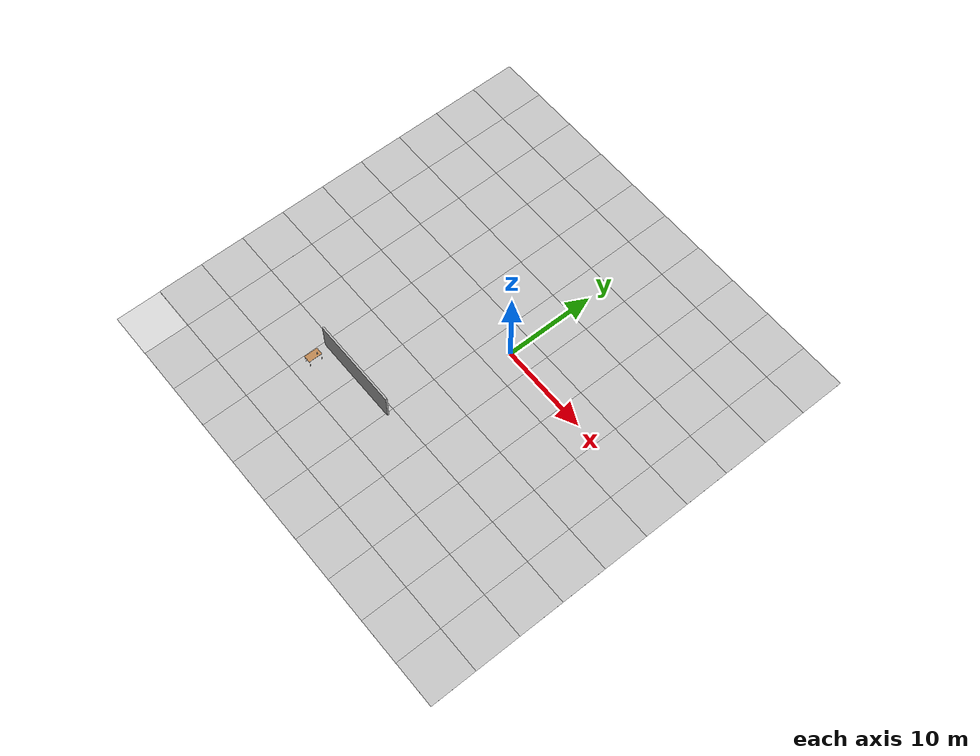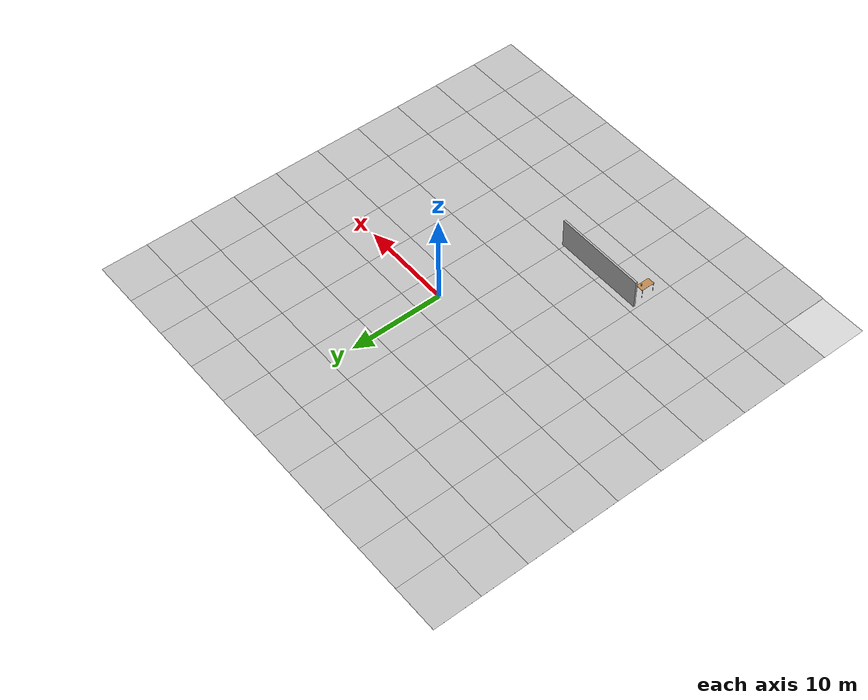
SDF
<sdf version="1.5">
 <world name="drc_practice_task_6">
  <scene>
   <grid>0</grid>
   <ambient>0.2 0.2 0.2 1</ambient>
   <background>0.7 0.7 0.7 1</background>
   <shadows>1</shadows>
  </scene>
  <physics type="ode">
   <gravity>0 0 -9.81</gravity>
   <ode>
    <solver>
     <type>quick</type>
     <iters>50</iters>
     <sor>1.4</sor>
     <use_dynamic_moi_rescaling>0</use_dynamic_moi_rescaling>
    </solver>
    <constraints>
     <cfm>0</cfm>
     <erp>0.2</erp>
     <contact_max_correcting_vel>100</contact_max_correcting_vel>
     <contact_surface_layer>0</contact_surface_layer>
    </constraints>
   </ode>
   <real_time_update_rate>1000</real_time_update_rate>
   <max_step_size>0.001</max_step_size>
   <real_time_factor>1</real_time_factor>
   <magnetic_field>5.5645e-06 2.28758e-05 -4.23884e-05</magnetic_field>
  </physics>
  <light name="sun" type="directional">
   <pose>0 0 100 0 -0 0</pose>
   <diffuse>0.9 0.9 0.9 1</diffuse>
   <specular>0.1 0.1 0.1 1</specular>
   <attenuation>
    <range>1000</range>
    <constant>0.9</constant>
    <linear>0.01</linear>
    <quadratic>0.001</quadratic>
   </attenuation>
   <direction>0.2 0.2 -0.9</direction>
  </light>
  <light name="light_bulb_2" type="point">
   <cast_shadows>0</cast_shadows>
   <pose>-10.6 -19.8 5 0 -0 0</pose>
   <diffuse>0.5 0.5 0.5 1</diffuse>
   <specular>0 0 0 1</specular>
   <attenuation>
    <range>80</range>
    <constant>0.9</constant>
    <linear>0.01</linear>
    <quadratic>0.001</quadratic>
   </attenuation>
   <direction>0 0 -1</direction>
  </light>
  <model name="pavement_plane">
   <static>1</static>
   <link name="link">
    <collision name="collision">
     <geometry><plane><normal>0 0 1</normal><size>50 50</size></plane></geometry>
     <surface><friction><ode><mu>100</mu><mu2>50</mu2></ode></friction></surface>
    </collision>
    <visual name="visual_0">
     <pose>-25 -25 0 0 -0 0</pose>
     <cast_shadows>0</cast_shadows>
     <geometry><plane><normal>0 0 1</normal><size>5 5</size></plane></geometry>
     <material>
      <script>
       <uri>model://pavement_plane/materials/scripts</uri>
       <uri>model://pavement_plane/materials/textures</uri>
       <name>vrc/pavement</name>
      </script>
     </material>
    </visual>
    <visual name="visual_1">
     <pose>-20 -25 0 0 -0 0</pose>
     <cast_shadows>0</cast_shadows>
     <geometry><plane><normal>0 0 1</normal><size>5 5</size></plane></geometry>
     <material>
      <script>
       <uri>model://pavement_plane/materials/scripts</uri>
       <uri>model://pavement_plane/materials/textures</uri>
       <name>vrc/pavement</name>
      </script>
     </material>
    </visual>
    <visual name="visual_2">
     <pose>-15 -25 0 0 -0 0</pose>
     <cast_shadows>0</cast_shadows>
     <geometry><plane><normal>0 0 1</normal><size>5 5</size></plane></geometry>
     <material>
      <script>
       <uri>model://pavement_plane/materials/scripts</uri>
       <uri>model://pavement_plane/materials/textures</uri>
       <name>vrc/pavement</name>
      </script>
     </material>
    </visual>
    <visual name="visual_3">
     <pose>-10 -25 0 0 -0 0</pose>
     <cast_shadows>0</cast_shadows>
     <geometry><plane><normal>0 0 1</normal><size>5 5</size></plane></geometry>
     <material>
      <script>
       <uri>model://pavement_plane/materials/scripts</uri>
       <uri>model://pavement_plane/materials/textures</uri>
       <name>vrc/pavement</name>
      </script>
     </material>
    </visual>
    <visual name="visual_4">
     <pose>-5 -25 0 0 -0 0</pose>
     <cast_shadows>0</cast_shadows>
     <geometry><plane><normal>0 0 1</normal><size>5 5</size></plane></geometry>
     <material>
      <script>
       <uri>model://pavement_plane/materials/scripts</uri>
       <uri>model://pavement_plane/materials/textures</uri>
       <name>vrc/pavement</name>
      </script>
     </material>
    </visual>
    <visual name="visual_5">
     <pose>0 -25 0 0 -0 0</pose>
     <cast_shadows>0</cast_shadows>
     <geometry><plane><normal>0 0 1</normal><size>5 5</size></plane></geometry>
     <material>
      <script>
       <uri>model://pavement_plane/materials/scripts</uri>
       <uri>model://pavement_plane/materials/textures</uri>
       <name>vrc/pavement</name>
      </script>
     </material>
    </visual>
    <visual name="visual_6">
     <pose>5 -25 0 0 -0 0</pose>
     <cast_shadows>0</cast_shadows>
     <geometry><plane><normal>0 0 1</normal><size>5 5</size></plane></geometry>
     <material>
      <script>
       <uri>model://pavement_plane/materials/scripts</uri>
       <uri>model://pavement_plane/materials/textures</uri>
       <name>vrc/pavement</name>
      </script>
     </material>
    </visual>
    <visual name="visual_7">
     <pose>10 -25 0 0 -0 0</pose>
     <cast_shadows>0</cast_shadows>
     <geometry><plane><normal>0 0 1</normal><size>5 5</size></plane></geometry>
     <material>
      <script>
       <uri>model://pavement_plane/materials/scripts</uri>
       <uri>model://pavement_plane/materials/textures</uri>
       <name>vrc/pavement</name>
      </script>
     </material>
    </visual>
    <visual name="visual_8">
     <pose>15 -25 0 0 -0 0</pose>
     <cast_shadows>0</cast_shadows>
     <geometry><plane><normal>0 0 1</normal><size>5 5</size></plane></geometry>
     <material>
      <script>
       <uri>model://pavement_plane/materials/scripts</uri>
       <uri>model://pavement_plane/materials/textures</uri>
       <name>vrc/pavement</name>
      </script>
     </material>
    </visual>
    <visual name="visual_9">
     <pose>20 -25 0 0 -0 0</pose>
     <cast_shadows>0</cast_shadows>
     <geometry><plane><normal>0 0 1</normal><size>5 5</size></plane></geometry>
     <material>
      <script>
       <uri>model://pavement_plane/materials/scripts</uri>
       <uri>model://pavement_plane/materials/textures</uri>
       <name>vrc/pavement</name>
      </script>
     </material>
    </visual>
    <visual name="visual_10">
     <pose>-25 -20 0 0 -0 0</pose>
     <cast_shadows>0</cast_shadows>
     <geometry><plane><normal>0 0 1</normal><size>5 5</size></plane></geometry>
     <material>
      <script>
       <uri>model://pavement_plane/materials/scripts</uri>
       <uri>model://pavement_plane/materials/textures</uri>
       <name>vrc/pavement</name>
      </script>
     </material>
    </visual>
    <visual name="visual_11">
     <pose>-20 -20 0 0 -0 0</pose>
     <cast_shadows>0</cast_shadows>
     <geometry><plane><normal>0 0 1</normal><size>5 5</size></plane></geometry>
     <material>
      <script>
       <uri>model://pavement_plane/materials/scripts</uri>
       <uri>model://pavement_plane/materials/textures</uri>
       <name>vrc/pavement</name>
      </script>
     </material>
    </visual>
    <visual name="visual_12">
     <pose>-15 -20 0 0 -0 0</pose>
     <cast_shadows>0</cast_shadows>
     <geometry><plane><normal>0 0 1</normal><size>5 5</size></plane></geometry>
     <material>
      <script>
       <uri>model://pavement_plane/materials/scripts</uri>
       <uri>model://pavement_plane/materials/textures</uri>
       <name>vrc/pavement</name>
      </script>
     </material>
    </visual>
    <visual name="visual_13">
     <pose>-10 -20 0 0 -0 0</pose>
     <cast_shadows>0</cast_shadows>
     <geometry><plane><normal>0 0 1</normal><size>5 5</size></plane></geometry>
     <material>
      <script>
       <uri>model://pavement_plane/materials/scripts</uri>
       <uri>model://pavement_plane/materials/textures</uri>
       <name>vrc/pavement</name>
      </script>
     </material>
    </visual>
    <visual name="visual_14">
     <pose>-5 -20 0 0 -0 0</pose>
     <cast_shadows>0</cast_shadows>
     <geometry><plane><normal>0 0 1</normal><size>5 5</size></plane></geometry>
     <material>
      <script>
       <uri>model://pavement_plane/materials/scripts</uri>
       <uri>model://pavement_plane/materials/textures</uri>
       <name>vrc/pavement</name>
      </script>
     </material>
    </visual>
    <visual name="visual_15">
     <pose>0 -20 0 0 -0 0</pose>
     <cast_shadows>0</cast_shadows>
     <geometry><plane><normal>0 0 1</normal><size>5 5</size></plane></geometry>
     <material>
      <script>
       <uri>model://pavement_plane/materials/scripts</uri>
       <uri>model://pavement_plane/materials/textures</uri>
       <name>vrc/pavement</name>
      </script>
     </material>
    </visual>
    <visual name="visual_16">
     <pose>5 -20 0 0 -0 0</pose>
     <cast_shadows>0</cast_shadows>
     <geometry><plane><normal>0 0 1</normal><size>5 5</size></plane></geometry>
     <material>
      <script>
       <uri>model://pavement_plane/materials/scripts</uri>
       <uri>model://pavement_plane/materials/textures</uri>
       <name>vrc/pavement</name>
      </script>
     </material>
    </visual>
    <visual name="visual_17">
     <pose>10 -20 0 0 -0 0</pose>
     <cast_shadows>0</cast_shadows>
     <geometry><plane><normal>0 0 1</normal><size>5 5</size></plane></geometry>
     <material>
      <script>
       <uri>model://pavement_plane/materials/scripts</uri>
       <uri>model://pavement_plane/materials/textures</uri>
       <name>vrc/pavement</name>
      </script>
     </material>
    </visual>
    <visual name="visual_18">
     <pose>15 -20 0 0 -0 0</pose>
     <cast_shadows>0</cast_shadows>
     <geometry><plane><normal>0 0 1</normal><size>5 5</size></plane></geometry>
     <material>
      <script>
       <uri>model://pavement_plane/materials/scripts</uri>
       <uri>model://pavement_plane/materials/textures</uri>
       <name>vrc/pavement</name>
      </script>
     </material>
    </visual>
    <visual name="visual_19">
     <pose>20 -20 0 0 -0 0</pose>
     <cast_shadows>0</cast_shadows>
     <geometry><plane><normal>0 0 1</normal><size>5 5</size></plane></geometry>
     <material>
      <script>
       <uri>model://pavement_plane/materials/scripts</uri>
       <uri>model://pavement_plane/materials/textures</uri>
       <name>vrc/pavement</name>
      </script>
     </material>
    </visual>
    <visual name="visual_20">
     <pose>-25 -15 0 0 -0 0</pose>
     <cast_shadows>0</cast_shadows>
     <geometry><plane><normal>0 0 1</normal><size>5 5</size></plane></geometry>
     <material>
      <script>
       <uri>model://pavement_plane/materials/scripts</uri>
       <uri>model://pavement_plane/materials/textures</uri>
       <name>vrc/pavement</name>
      </script>
     </material>
    </visual>
    <visual name="visual_21">
     <pose>-20 -15 0 0 -0 0</pose>
     <cast_shadows>0</cast_shadows>
     <geometry><plane><normal>0 0 1</normal><size>5 5</size></plane></geometry>
     <material>
      <script>
       <uri>model://pavement_plane/materials/scripts</uri>
       <uri>model://pavement_plane/materials/textures</uri>
       <name>vrc/pavement</name>
      </script>
     </material>
    </visual>
    <visual name="visual_22">
     <pose>-15 -15 0 0 -0 0</pose>
     <cast_shadows>0</cast_shadows>
     <geometry><plane><normal>0 0 1</normal><size>5 5</size></plane></geometry>
     <material>
      <script>
       <uri>model://pavement_plane/materials/scripts</uri>
       <uri>model://pavement_plane/materials/textures</uri>
       <name>vrc/pavement</name>
      </script>
     </material>
    </visual>
    <visual name="visual_23">
     <pose>-10 -15 0 0 -0 0</pose>
     <cast_shadows>0</cast_shadows>
     <geometry><plane><normal>0 0 1</normal><size>5 5</size></plane></geometry>
     <material>
      <script>
       <uri>model://pavement_plane/materials/scripts</uri>
       <uri>model://pavement_plane/materials/textures</uri>
       <name>vrc/pavement</name>
      </script>
     </material>
    </visual>
    <visual name="visual_24">
     <pose>-5 -15 0 0 -0 0</pose>
     <cast_shadows>0</cast_shadows>
     <geometry><plane><normal>0 0 1</normal><size>5 5</size></plane></geometry>
     <material>
      <script>
       <uri>model://pavement_plane/materials/scripts</uri>
       <uri>model://pavement_plane/materials/textures</uri>
       <name>vrc/pavement</name>
      </script>
     </material>
    </visual>
    <visual name="visual_25">
     <pose>0 -15 0 0 -0 0</pose>
     <cast_shadows>0</cast_shadows>
     <geometry><plane><normal>0 0 1</normal><size>5 5</size></plane></geometry>
     <material>
      <script>
       <uri>model://pavement_plane/materials/scripts</uri>
       <uri>model://pavement_plane/materials/textures</uri>
       <name>vrc/pavement</name>
      </script>
     </material>
    </visual>
    <visual name="visual_26">
     <pose>5 -15 0 0 -0 0</pose>
     <cast_shadows>0</cast_shadows>
     <geometry><plane><normal>0 0 1</normal><size>5 5</size></plane></geometry>
     <material>
      <script>
       <uri>model://pavement_plane/materials/scripts</uri>
       <uri>model://pavement_plane/materials/textures</uri>
       <name>vrc/pavement</name>
      </script>
     </material>
    </visual>
    <visual name="visual_27">
     <pose>10 -15 0 0 -0 0</pose>
     <cast_shadows>0</cast_shadows>
     <geometry><plane><normal>0 0 1</normal><size>5 5</size></plane></geometry>
     <material>
      <script>
       <uri>model://pavement_plane/materials/scripts</uri>
       <uri>model://pavement_plane/materials/textures</uri>
       <name>vrc/pavement</name>
      </script>
     </material>
    </visual>
    <visual name="visual_28">
     <pose>15 -15 0 0 -0 0</pose>
     <cast_shadows>0</cast_shadows>
     <geometry><plane><normal>0 0 1</normal><size>5 5</size></plane></geometry>
     <material>
      <script>
       <uri>model://pavement_plane/materials/scripts</uri>
       <uri>model://pavement_plane/materials/textures</uri>
       <name>vrc/pavement</name>
      </script>
     </material>
    </visual>
    <visual name="visual_29">
     <pose>20 -15 0 0 -0 0</pose>
     <cast_shadows>0</cast_shadows>
     <geometry><plane><normal>0 0 1</normal><size>5 5</size></plane></geometry>
     <material>
      <script>
       <uri>model://pavement_plane/materials/scripts</uri>
       <uri>model://pavement_plane/materials/textures</uri>
       <name>vrc/pavement</name>
      </script>
     </material>
    </visual>
    <visual name="visual_30">
     <pose>-25 -10 0 0 -0 0</pose>
     <cast_shadows>0</cast_shadows>
     <geometry><plane><normal>0 0 1</normal><size>5 5</size></plane></geometry>
     <material>
      <script>
       <uri>model://pavement_plane/materials/scripts</uri>
       <uri>model://pavement_plane/materials/textures</uri>
       <name>vrc/pavement</name>
      </script>
     </material>
    </visual>
    <visual name="visual_31">
     <pose>-20 -10 0 0 -0 0</pose>
     <cast_shadows>0</cast_shadows>
     <geometry><plane><normal>0 0 1</normal><size>5 5</size></plane></geometry>
     <material>
      <script>
       <uri>model://pavement_plane/materials/scripts</uri>
       <uri>model://pavement_plane/materials/textures</uri>
       <name>vrc/pavement</name>
      </script>
     </material>
    </visual>
    <visual name="visual_32">
     <pose>-15 -10 0 0 -0 0</pose>
     <cast_shadows>0</cast_shadows>
     <geometry><plane><normal>0 0 1</normal><size>5 5</size></plane></geometry>
     <material>
      <script>
       <uri>model://pavement_plane/materials/scripts</uri>
       <uri>model://pavement_plane/materials/textures</uri>
       <name>vrc/pavement</name>
      </script>
     </material>
    </visual>
    <visual name="visual_33">
     <pose>-10 -10 0 0 -0 0</pose>
     <cast_shadows>0</cast_shadows>
     <geometry><plane><normal>0 0 1</normal><size>5 5</size></plane></geometry>
     <material>
      <script>
       <uri>model://pavement_plane/materials/scripts</uri>
       <uri>model://pavement_plane/materials/textures</uri>
       <name>vrc/pavement</name>
      </script>
     </material>
    </visual>
    <visual name="visual_34">
     <pose>-5 -10 0 0 -0 0</pose>
     <cast_shadows>0</cast_shadows>
     <geometry><plane><normal>0 0 1</normal><size>5 5</size></plane></geometry>
     <material>
      <script>
       <uri>model://pavement_plane/materials/scripts</uri>
       <uri>model://pavement_plane/materials/textures</uri>
       <name>vrc/pavement</name>
      </script>
     </material>
    </visual>
    <visual name="visual_35">
     <pose>0 -10 0 0 -0 0</pose>
     <cast_shadows>0</cast_shadows>
     <geometry><plane><normal>0 0 1</normal><size>5 5</size></plane></geometry>
     <material>
      <script>
       <uri>model://pavement_plane/materials/scripts</uri>
       <uri>model://pavement_plane/materials/textures</uri>
       <name>vrc/pavement</name>
      </script>
     </material>
    </visual>
    <visual name="visual_36">
     <pose>5 -10 0 0 -0 0</pose>
     <cast_shadows>0</cast_shadows>
     <geometry><plane><normal>0 0 1</normal><size>5 5</size></plane></geometry>
     <material>
      <script>
       <uri>model://pavement_plane/materials/scripts</uri>
       <uri>model://pavement_plane/materials/textures</uri>
       <name>vrc/pavement</name>
      </script>
     </material>
    </visual>
    <visual name="visual_37">
     <pose>10 -10 0 0 -0 0</pose>
     <cast_shadows>0</cast_shadows>
     <geometry><plane><normal>0 0 1</normal><size>5 5</size></plane></geometry>
     <material>
      <script>
       <uri>model://pavement_plane/materials/scripts</uri>
       <uri>model://pavement_plane/materials/textures</uri>
       <name>vrc/pavement</name>
      </script>
     </material>
    </visual>
    <visual name="visual_38">
     <pose>15 -10 0 0 -0 0</pose>
     <cast_shadows>0</cast_shadows>
     <geometry><plane><normal>0 0 1</normal><size>5 5</size></plane></geometry>
     <material>
      <script>
       <uri>model://pavement_plane/materials/scripts</uri>
       <uri>model://pavement_plane/materials/textures</uri>
       <name>vrc/pavement</name>
      </script>
     </material>
    </visual>
    <visual name="visual_39">
     <pose>20 -10 0 0 -0 0</pose>
     <cast_shadows>0</cast_shadows>
     <geometry><plane><normal>0 0 1</normal><size>5 5</size></plane></geometry>
     <material>
      <script>
       <uri>model://pavement_plane/materials/scripts</uri>
       <uri>model://pavement_plane/materials/textures</uri>
       <name>vrc/pavement</name>
      </script>
     </material>
    </visual>
    <visual name="visual_40">
     <pose>-25 -5 0 0 -0 0</pose>
     <cast_shadows>0</cast_shadows>
     <geometry><plane><normal>0 0 1</normal><size>5 5</size></plane></geometry>
     <material>
      <script>
       <uri>model://pavement_plane/materials/scripts</uri>
       <uri>model://pavement_plane/materials/textures</uri>
       <name>vrc/pavement</name>
      </script>
     </material>
    </visual>
    <visual name="visual_41">
     <pose>-20 -5 0 0 -0 0</pose>
     <cast_shadows>0</cast_shadows>
     <geometry><plane><normal>0 0 1</normal><size>5 5</size></plane></geometry>
     <material>
      <script>
       <uri>model://pavement_plane/materials/scripts</uri>
       <uri>model://pavement_plane/materials/textures</uri>
       <name>vrc/pavement</name>
      </script>
     </material>
    </visual>
    <visual name="visual_42">
     <pose>-15 -5 0 0 -0 0</pose>
     <cast_shadows>0</cast_shadows>
     <geometry><plane><normal>0 0 1</normal><size>5 5</size></plane></geometry>
     <material>
      <script>
       <uri>model://pavement_plane/materials/scripts</uri>
       <uri>model://pavement_plane/materials/textures</uri>
       <name>vrc/pavement</name>
      </script>
     </material>
    </visual>
    <visual name="visual_43">
     <pose>-10 -5 0 0 -0 0</pose>
     <cast_shadows>0</cast_shadows>
     <geometry><plane><normal>0 0 1</normal><size>5 5</size></plane></geometry>
     <material>
      <script>
       <uri>model://pavement_plane/materials/scripts</uri>
       <uri>model://pavement_plane/materials/textures</uri>
       <name>vrc/pavement</name>
      </script>
     </material>
    </visual>
    <visual name="visual_44">
     <pose>-5 -5 0 0 -0 0</pose>
     <cast_shadows>0</cast_shadows>
     <geometry><plane><normal>0 0 1</normal><size>5 5</size></plane></geometry>
     <material>
      <script>
       <uri>model://pavement_plane/materials/scripts</uri>
       <uri>model://pavement_plane/materials/textures</uri>
       <name>vrc/pavement</name>
      </script>
     </material>
    </visual>
    <visual name="visual_45">
     <pose>0 -5 0 0 -0 0</pose>
     <cast_shadows>0</cast_shadows>
     <geometry><plane><normal>0 0 1</normal><size>5 5</size></plane></geometry>
     <material>
      <script>
       <uri>model://pavement_plane/materials/scripts</uri>
       <uri>model://pavement_plane/materials/textures</uri>
       <name>vrc/pavement</name>
      </script>
     </material>
    </visual>
    <visual name="visual_46">
     <pose>5 -5 0 0 -0 0</pose>
     <cast_shadows>0</cast_shadows>
     <geometry><plane><normal>0 0 1</normal><size>5 5</size></plane></geometry>
     <material>
      <script>
       <uri>model://pavement_plane/materials/scripts</uri>
       <uri>model://pavement_plane/materials/textures</uri>
       <name>vrc/pavement</name>
      </script>
     </material>
    </visual>
    <visual name="visual_47">
     <pose>10 -5 0 0 -0 0</pose>
     <cast_shadows>0</cast_shadows>
     <geometry><plane><normal>0 0 1</normal><size>5 5</size></plane></geometry>
     <material>
      <script>
       <uri>model://pavement_plane/materials/scripts</uri>
       <uri>model://pavement_plane/materials/textures</uri>
       <name>vrc/pavement</name>
      </script>
     </material>
    </visual>
    <visual name="visual_48">
     <pose>15 -5 0 0 -0 0</pose>
     <cast_shadows>0</cast_shadows>
     <geometry><plane><normal>0 0 1</normal><size>5 5</size></plane></geometry>
     <material>
      <script>
       <uri>model://pavement_plane/materials/scripts</uri>
       <uri>model://pavement_plane/materials/textures</uri>
       <name>vrc/pavement</name>
      </script>
     </material>
    </visual>
    <visual name="visual_49">
     <pose>20 -5 0 0 -0 0</pose>
     <cast_shadows>0</cast_shadows>
     <geometry><plane><normal>0 0 1</normal><size>5 5</size></plane></geometry>
     <material>
      <script>
       <uri>model://pavement_plane/materials/scripts</uri>
       <uri>model://pavement_plane/materials/textures</uri>
       <name>vrc/pavement</name>
      </script>
     </material>
    </visual>
    <visual name="visual_50">
     <pose>-25 0 0 0 -0 0</pose>
     <cast_shadows>0</cast_shadows>
     <geometry><plane><normal>0 0 1</normal><size>5 5</size></plane></geometry>
     <material>
      <script>
       <uri>model://pavement_plane/materials/scripts</uri>
       <uri>model://pavement_plane/materials/textures</uri>
       <name>vrc/pavement</name>
      </script>
     </material>
    </visual>
    <visual name="visual_51">
     <pose>-20 0 0 0 -0 0</pose>
     <cast_shadows>0</cast_shadows>
     <geometry><plane><normal>0 0 1</normal><size>5 5</size></plane></geometry>
     <material>
      <script>
       <uri>model://pavement_plane/materials/scripts</uri>
       <uri>model://pavement_plane/materials/textures</uri>
       <name>vrc/pavement</name>
      </script>
     </material>
    </visual>
    <visual name="visual_52">
     <pose>-15 0 0 0 -0 0</pose>
     <cast_shadows>0</cast_shadows>
     <geometry><plane><normal>0 0 1</normal><size>5 5</size></plane></geometry>
     <material>
      <script>
       <uri>model://pavement_plane/materials/scripts</uri>
       <uri>model://pavement_plane/materials/textures</uri>
       <name>vrc/pavement</name>
      </script>
     </material>
    </visual>
    <visual name="visual_53">
     <pose>-10 0 0 0 -0 0</pose>
     <cast_shadows>0</cast_shadows>
     <geometry><plane><normal>0 0 1</normal><size>5 5</size></plane></geometry>
     <material>
      <script>
       <uri>model://pavement_plane/materials/scripts</uri>
       <uri>model://pavement_plane/materials/textures</uri>
       <name>vrc/pavement</name>
      </script>
     </material>
    </visual>
    <visual name="visual_54">
     <pose>-5 0 0 0 -0 0</pose>
     <cast_shadows>0</cast_shadows>
     <geometry><plane><normal>0 0 1</normal><size>5 5</size></plane></geometry>
     <material>
      <script>
       <uri>model://pavement_plane/materials/scripts</uri>
       <uri>model://pavement_plane/materials/textures</uri>
       <name>vrc/pavement</name>
      </script>
     </material>
    </visual>
    <visual name="visual_55">
     <cast_shadows>0</cast_shadows>
     <geometry><plane><normal>0 0 1</normal><size>5 5</size></plane></geometry>
     <material>
      <script>
       <uri>model://pavement_plane/materials/scripts</uri>
       <uri>model://pavement_plane/materials/textures</uri>
       <name>vrc/pavement</name>
      </script>
     </material>
    </visual>
    <visual name="visual_56">
     <pose>5 0 0 0 -0 0</pose>
     <cast_shadows>0</cast_shadows>
     <geometry><plane><normal>0 0 1</normal><size>5 5</size></plane></geometry>
     <material>
      <script>
       <uri>model://pavement_plane/materials/scripts</uri>
       <uri>model://pavement_plane/materials/textures</uri>
       <name>vrc/pavement</name>
      </script>
     </material>
    </visual>
    <visual name="visual_57">
     <pose>10 0 0 0 -0 0</pose>
     <cast_shadows>0</cast_shadows>
     <geometry><plane><normal>0 0 1</normal><size>5 5</size></plane></geometry>
     <material>
      <script>
       <uri>model://pavement_plane/materials/scripts</uri>
       <uri>model://pavement_plane/materials/textures</uri>
       <name>vrc/pavement</name>
      </script>
     </material>
    </visual>
    <visual name="visual_58">
     <pose>15 0 0 0 -0 0</pose>
     <cast_shadows>0</cast_shadows>
     <geometry><plane><normal>0 0 1</normal><size>5 5</size></plane></geometry>
     <material>
      <script>
       <uri>model://pavement_plane/materials/scripts</uri>
       <uri>model://pavement_plane/materials/textures</uri>
       <name>vrc/pavement</name>
      </script>
     </material>
    </visual>
    <visual name="visual_59">
     <pose>20 0 0 0 -0 0</pose>
     <cast_shadows>0</cast_shadows>
     <geometry><plane><normal>0 0 1</normal><size>5 5</size></plane></geometry>
     <material>
      <script>
       <uri>model://pavement_plane/materials/scripts</uri>
       <uri>model://pavement_plane/materials/textures</uri>
       <name>vrc/pavement</name>
      </script>
     </material>
    </visual>
    <visual name="visual_60">
     <pose>-25 5 0 0 -0 0</pose>
     <cast_shadows>0</cast_shadows>
     <geometry><plane><normal>0 0 1</normal><size>5 5</size></plane></geometry>
     <material>
      <script>
       <uri>model://pavement_plane/materials/scripts</uri>
       <uri>model://pavement_plane/materials/textures</uri>
       <name>vrc/pavement</name>
      </script>
     </material>
    </visual>
    <visual name="visual_61">
     <pose>-20 5 0 0 -0 0</pose>
     <cast_shadows>0</cast_shadows>
     <geometry><plane><normal>0 0 1</normal><size>5 5</size></plane></geometry>
     <material>
      <script>
       <uri>model://pavement_plane/materials/scripts</uri>
       <uri>model://pavement_plane/materials/textures</uri>
       <name>vrc/pavement</name>
      </script>
     </material>
    </visual>
    <visual name="visual_62">
     <pose>-15 5 0 0 -0 0</pose>
     <cast_shadows>0</cast_shadows>
     <geometry><plane><normal>0 0 1</normal><size>5 5</size></plane></geometry>
     <material>
      <script>
       <uri>model://pavement_plane/materials/scripts</uri>
       <uri>model://pavement_plane/materials/textures</uri>
       <name>vrc/pavement</name>
      </script>
     </material>
    </visual>
    <visual name="visual_63">
     <pose>-10 5 0 0 -0 0</pose>
     <cast_shadows>0</cast_shadows>
     <geometry><plane><normal>0 0 1</normal><size>5 5</size></plane></geometry>
     <material>
      <script>
       <uri>model://pavement_plane/materials/scripts</uri>
       <uri>model://pavement_plane/materials/textures</uri>
       <name>vrc/pavement</name>
      </script>
     </material>
    </visual>
    <visual name="visual_64">
     <pose>-5 5 0 0 -0 0</pose>
     <cast_shadows>0</cast_shadows>
     <geometry><plane><normal>0 0 1</normal><size>5 5</size></plane></geometry>
     <material>
      <script>
       <uri>model://pavement_plane/materials/scripts</uri>
       <uri>model://pavement_plane/materials/textures</uri>
       <name>vrc/pavement</name>
      </script>
     </material>
    </visual>
    <visual name="visual_65">
     <pose>0 5 0 0 -0 0</pose>
     <cast_shadows>0</cast_shadows>
     <geometry><plane><normal>0 0 1</normal><size>5 5</size></plane></geometry>
     <material>
      <script>
       <uri>model://pavement_plane/materials/scripts</uri>
       <uri>model://pavement_plane/materials/textures</uri>
       <name>vrc/pavement</name>
      </script>
     </material>
    </visual>
    <visual name="visual_66">
     <pose>5 5 0 0 -0 0</pose>
     <cast_shadows>0</cast_shadows>
     <geometry><plane><normal>0 0 1</normal><size>5 5</size></plane></geometry>
     <material>
      <script>
       <uri>model://pavement_plane/materials/scripts</uri>
       <uri>model://pavement_plane/materials/textures</uri>
       <name>vrc/pavement</name>
      </script>
     </material>
    </visual>
    <visual name="visual_67">
     <pose>10 5 0 0 -0 0</pose>
     <cast_shadows>0</cast_shadows>
     <geometry><plane><normal>0 0 1</normal><size>5 5</size></plane></geometry>
     <material>
      <script>
       <uri>model://pavement_plane/materials/scripts</uri>
       <uri>model://pavement_plane/materials/textures</uri>
       <name>vrc/pavement</name>
      </script>
     </material>
    </visual>
    <visual name="visual_68">
     <pose>15 5 0 0 -0 0</pose>
     <cast_shadows>0</cast_shadows>
     <geometry><plane><normal>0 0 1</normal><size>5 5</size></plane></geometry>
     <material>
      <script>
       <uri>model://pavement_plane/materials/scripts</uri>
       <uri>model://pavement_plane/materials/textures</uri>
       <name>vrc/pavement</name>
      </script>
     </material>
    </visual>
    <visual name="visual_69">
     <pose>20 5 0 0 -0 0</pose>
     <cast_shadows>0</cast_shadows>
     <geometry><plane><normal>0 0 1</normal><size>5 5</size></plane></geometry>
     <material>
      <script>
       <uri>model://pavement_plane/materials/scripts</uri>
       <uri>model://pavement_plane/materials/textures</uri>
       <name>vrc/pavement</name>
      </script>
     </material>
    </visual>
    <visual name="visual_70">
     <pose>-25 10 0 0 -0 0</pose>
     <cast_shadows>0</cast_shadows>
     <geometry><plane><normal>0 0 1</normal><size>5 5</size></plane></geometry>
     <material>
      <script>
       <uri>model://pavement_plane/materials/scripts</uri>
       <uri>model://pavement_plane/materials/textures</uri>
       <name>vrc/pavement</name>
      </script>
     </material>
    </visual>
    <visual name="visual_71">
     <pose>-20 10 0 0 -0 0</pose>
     <cast_shadows>0</cast_shadows>
     <geometry><plane><normal>0 0 1</normal><size>5 5</size></plane></geometry>
     <material>
      <script>
       <uri>model://pavement_plane/materials/scripts</uri>
       <uri>model://pavement_plane/materials/textures</uri>
       <name>vrc/pavement</name>
      </script>
     </material>
    </visual>
    <visual name="visual_72">
     <pose>-15 10 0 0 -0 0</pose>
     <cast_shadows>0</cast_shadows>
     <geometry><plane><normal>0 0 1</normal><size>5 5</size></plane></geometry>
     <material>
      <script>
       <uri>model://pavement_plane/materials/scripts</uri>
       <uri>model://pavement_plane/materials/textures</uri>
       <name>vrc/pavement</name>
      </script>
     </material>
    </visual>
    <visual name="visual_73">
     <pose>-10 10 0 0 -0 0</pose>
     <cast_shadows>0</cast_shadows>
     <geometry><plane><normal>0 0 1</normal><size>5 5</size></plane></geometry>
     <material>
      <script>
       <uri>model://pavement_plane/materials/scripts</uri>
       <uri>model://pavement_plane/materials/textures</uri>
       <name>vrc/pavement</name>
      </script>
     </material>
    </visual>
    <visual name="visual_74">
     <pose>-5 10 0 0 -0 0</pose>
     <cast_shadows>0</cast_shadows>
     <geometry><plane><normal>0 0 1</normal><size>5 5</size></plane></geometry>
     <material>
      <script>
       <uri>model://pavement_plane/materials/scripts</uri>
       <uri>model://pavement_plane/materials/textures</uri>
       <name>vrc/pavement</name>
      </script>
     </material>
    </visual>
    <visual name="visual_75">
     <pose>0 10 0 0 -0 0</pose>
     <cast_shadows>0</cast_shadows>
     <geometry><plane><normal>0 0 1</normal><size>5 5</size></plane></geometry>
     <material>
      <script>
       <uri>model://pavement_plane/materials/scripts</uri>
       <uri>model://pavement_plane/materials/textures</uri>
       <name>vrc/pavement</name>
      </script>
     </material>
    </visual>
    <visual name="visual_76">
     <pose>5 10 0 0 -0 0</pose>
     <cast_shadows>0</cast_shadows>
     <geometry><plane><normal>0 0 1</normal><size>5 5</size></plane></geometry>
     <material>
      <script>
       <uri>model://pavement_plane/materials/scripts</uri>
       <uri>model://pavement_plane/materials/textures</uri>
       <name>vrc/pavement</name>
      </script>
     </material>
    </visual>
    <visual name="visual_77">
     <pose>10 10 0 0 -0 0</pose>
     <cast_shadows>0</cast_shadows>
     <geometry><plane><normal>0 0 1</normal><size>5 5</size></plane></geometry>
     <material>
      <script>
       <uri>model://pavement_plane/materials/scripts</uri>
       <uri>model://pavement_plane/materials/textures</uri>
       <name>vrc/pavement</name>
      </script>
     </material>
    </visual>
    <visual name="visual_78">
     <pose>15 10 0 0 -0 0</pose>
     <cast_shadows>0</cast_shadows>
     <geometry><plane><normal>0 0 1</normal><size>5 5</size></plane></geometry>
     <material>
      <script>
       <uri>model://pavement_plane/materials/scripts</uri>
       <uri>model://pavement_plane/materials/textures</uri>
       <name>vrc/pavement</name>
      </script>
     </material>
    </visual>
    <visual name="visual_79">
     <pose>20 10 0 0 -0 0</pose>
     <cast_shadows>0</cast_shadows>
     <geometry><plane><normal>0 0 1</normal><size>5 5</size></plane></geometry>
     <material>
      <script>
       <uri>model://pavement_plane/materials/scripts</uri>
       <uri>model://pavement_plane/materials/textures</uri>
       <name>vrc/pavement</name>
      </script>
     </material>
    </visual>
    <visual name="visual_80">
     <pose>-25 15 0 0 -0 0</pose>
     <cast_shadows>0</cast_shadows>
     <geometry><plane><normal>0 0 1</normal><size>5 5</size></plane></geometry>
     <material>
      <script>
       <uri>model://pavement_plane/materials/scripts</uri>
       <uri>model://pavement_plane/materials/textures</uri>
       <name>vrc/pavement</name>
      </script>
     </material>
    </visual>
    <visual name="visual_81">
     <pose>-20 15 0 0 -0 0</pose>
     <cast_shadows>0</cast_shadows>
     <geometry><plane><normal>0 0 1</normal><size>5 5</size></plane></geometry>
     <material>
      <script>
       <uri>model://pavement_plane/materials/scripts</uri>
       <uri>model://pavement_plane/materials/textures</uri>
       <name>vrc/pavement</name>
      </script>
     </material>
    </visual>
    <visual name="visual_82">
     <pose>-15 15 0 0 -0 0</pose>
     <cast_shadows>0</cast_shadows>
     <geometry><plane><normal>0 0 1</normal><size>5 5</size></plane></geometry>
     <material>
      <script>
       <uri>model://pavement_plane/materials/scripts</uri>
       <uri>model://pavement_plane/materials/textures</uri>
       <name>vrc/pavement</name>
      </script>
     </material>
    </visual>
    <visual name="visual_83">
     <pose>-10 15 0 0 -0 0</pose>
     <cast_shadows>0</cast_shadows>
     <geometry><plane><normal>0 0 1</normal><size>5 5</size></plane></geometry>
     <material>
      <script>
       <uri>model://pavement_plane/materials/scripts</uri>
       <uri>model://pavement_plane/materials/textures</uri>
       <name>vrc/pavement</name>
      </script>
     </material>
    </visual>
    <visual name="visual_84">
     <pose>-5 15 0 0 -0 0</pose>
     <cast_shadows>0</cast_shadows>
     <geometry><plane><normal>0 0 1</normal><size>5 5</size></plane></geometry>
     <material>
      <script>
       <uri>model://pavement_plane/materials/scripts</uri>
       <uri>model://pavement_plane/materials/textures</uri>
       <name>vrc/pavement</name>
      </script>
     </material>
    </visual>
    <visual name="visual_85">
     <pose>0 15 0 0 -0 0</pose>
     <cast_shadows>0</cast_shadows>
     <geometry><plane><normal>0 0 1</normal><size>5 5</size></plane></geometry>
     <material>
      <script>
       <uri>model://pavement_plane/materials/scripts</uri>
       <uri>model://pavement_plane/materials/textures</uri>
       <name>vrc/pavement</name>
      </script>
     </material>
    </visual>
    <visual name="visual_86">
     <pose>5 15 0 0 -0 0</pose>
     <cast_shadows>0</cast_shadows>
     <geometry><plane><normal>0 0 1</normal><size>5 5</size></plane></geometry>
     <material>
      <script>
       <uri>model://pavement_plane/materials/scripts</uri>
       <uri>model://pavement_plane/materials/textures</uri>
       <name>vrc/pavement</name>
      </script>
     </material>
    </visual>
    <visual name="visual_87">
     <pose>10 15 0 0 -0 0</pose>
     <cast_shadows>0</cast_shadows>
     <geometry><plane><normal>0 0 1</normal><size>5 5</size></plane></geometry>
     <material>
      <script>
       <uri>model://pavement_plane/materials/scripts</uri>
       <uri>model://pavement_plane/materials/textures</uri>
       <name>vrc/pavement</name>
      </script>
     </material>
    </visual>
    <visual name="visual_88">
     <pose>15 15 0 0 -0 0</pose>
     <cast_shadows>0</cast_shadows>
     <geometry><plane><normal>0 0 1</normal><size>5 5</size></plane></geometry>
     <material>
      <script>
       <uri>model://pavement_plane/materials/scripts</uri>
       <uri>model://pavement_plane/materials/textures</uri>
       <name>vrc/pavement</name>
      </script>
     </material>
    </visual>
    <visual name="visual_89">
     <pose>20 15 0 0 -0 0</pose>
     <cast_shadows>0</cast_shadows>
     <geometry><plane><normal>0 0 1</normal><size>5 5</size></plane></geometry>
     <material>
      <script>
       <uri>model://pavement_plane/materials/scripts</uri>
       <uri>model://pavement_plane/materials/textures</uri>
       <name>vrc/pavement</name>
      </script>
     </material>
    </visual>
    <visual name="visual_90">
     <pose>-25 20 0 0 -0 0</pose>
     <cast_shadows>0</cast_shadows>
     <geometry><plane><normal>0 0 1</normal><size>5 5</size></plane></geometry>
     <material>
      <script>
       <uri>model://pavement_plane/materials/scripts</uri>
       <uri>model://pavement_plane/materials/textures</uri>
       <name>vrc/pavement</name>
      </script>
     </material>
    </visual>
    <visual name="visual_91">
     <pose>-20 20 0 0 -0 0</pose>
     <cast_shadows>0</cast_shadows>
     <geometry><plane><normal>0 0 1</normal><size>5 5</size></plane></geometry>
     <material>
      <script>
       <uri>model://pavement_plane/materials/scripts</uri>
       <uri>model://pavement_plane/materials/textures</uri>
       <name>vrc/pavement</name>
      </script>
     </material>
    </visual>
    <visual name="visual_92">
     <pose>-15 20 0 0 -0 0</pose>
     <cast_shadows>0</cast_shadows>
     <geometry><plane><normal>0 0 1</normal><size>5 5</size></plane></geometry>
     <material>
      <script>
       <uri>model://pavement_plane/materials/scripts</uri>
       <uri>model://pavement_plane/materials/textures</uri>
       <name>vrc/pavement</name>
      </script>
     </material>
    </visual>
    <visual name="visual_93">
     <pose>-10 20 0 0 -0 0</pose>
     <cast_shadows>0</cast_shadows>
     <geometry><plane><normal>0 0 1</normal><size>5 5</size></plane></geometry>
     <material>
      <script>
       <uri>model://pavement_plane/materials/scripts</uri>
       <uri>model://pavement_plane/materials/textures</uri>
       <name>vrc/pavement</name>
      </script>
     </material>
    </visual>
    <visual name="visual_94">
     <pose>-5 20 0 0 -0 0</pose>
     <cast_shadows>0</cast_shadows>
     <geometry><plane><normal>0 0 1</normal><size>5 5</size></plane></geometry>
     <material>
      <script>
       <uri>model://pavement_plane/materials/scripts</uri>
       <uri>model://pavement_plane/materials/textures</uri>
       <name>vrc/pavement</name>
      </script>
     </material>
    </visual>
    <visual name="visual_95">
     <pose>0 20 0 0 -0 0</pose>
     <cast_shadows>0</cast_shadows>
     <geometry><plane><normal>0 0 1</normal><size>5 5</size></plane></geometry>
     <material>
      <script>
       <uri>model://pavement_plane/materials/scripts</uri>
       <uri>model://pavement_plane/materials/textures</uri>
       <name>vrc/pavement</name>
      </script>
     </material>
    </visual>
    <visual name="visual_96">
     <pose>5 20 0 0 -0 0</pose>
     <cast_shadows>0</cast_shadows>
     <geometry><plane><normal>0 0 1</normal><size>5 5</size></plane></geometry>
     <material>
      <script>
       <uri>model://pavement_plane/materials/scripts</uri>
       <uri>model://pavement_plane/materials/textures</uri>
       <name>vrc/pavement</name>
      </script>
     </material>
    </visual>
    <visual name="visual_97">
     <pose>10 20 0 0 -0 0</pose>
     <cast_shadows>0</cast_shadows>
     <geometry><plane><normal>0 0 1</normal><size>5 5</size></plane></geometry>
     <material>
      <script>
       <uri>model://pavement_plane/materials/scripts</uri>
       <uri>model://pavement_plane/materials/textures</uri>
       <name>vrc/pavement</name>
      </script>
     </material>
    </visual>
    <visual name="visual_98">
     <pose>15 20 0 0 -0 0</pose>
     <cast_shadows>0</cast_shadows>
     <geometry><plane><normal>0 0 1</normal><size>5 5</size></plane></geometry>
     <material>
      <script>
       <uri>model://pavement_plane/materials/scripts</uri>
       <uri>model://pavement_plane/materials/textures</uri>
       <name>vrc/pavement</name>
      </script>
     </material>
    </visual>
    <visual name="visual_99">
     <pose>20 20 0 0 -0 0</pose>
     <cast_shadows>0</cast_shadows>
     <geometry><plane><normal>0 0 1</normal><size>5 5</size></plane></geometry>
     <material>
      <script>
       <uri>model://pavement_plane/materials/scripts</uri>
       <uri>model://pavement_plane/materials/textures</uri>
       <name>vrc/pavement</name>
      </script>
     </material>
    </visual>
    <velocity_decay><linear>0</linear><angular>0</angular></velocity_decay>
   </link>
  </model>
  <model name="cutout_wall">
   <static>1</static>
   <link name="link">
    <pose>0 0 1.4 0 -0 0</pose>
    <collision name="collision">
     <geometry><box><size>10 0.2 3.8</size></box></geometry>
     <surface>
      <contact>
       <collide_without_contact>1</collide_without_contact>
       <collide_without_contact_bitmask>2</collide_without_contact_bitmask>
      </contact>
     </surface>
    </collision>
    <visual name="visual">
     <cast_shadows>0</cast_shadows>
     <geometry><box><size>10 0.2 3.8</size></box></geometry>
     <material>
      <script>
       <uri>model://cutout_wall/materials/scripts</uri>
       <uri>model://cutout_wall/materials/textures</uri>
       <name>drc_practice/cutout_wall</name>
      </script>
     </material>
    </visual>
    <sensor name="mud_contact" type="contact">
     <always_on>1</always_on>
     <update_rate>1000</update_rate>
     <contact><collision>collision</collision><topic>__default_topic__</topic></contact>
    </sensor>
    <velocity_decay><linear>0</linear><angular>0</angular></velocity_decay>
   </link>
   <plugin name="gazebo_mud" filename="libMudPlugin.so">
    <contact_sensor_name>link/mud_contact</contact_sensor_name>
    <stiffness>0.0</stiffness>
    <damping>40.0</damping>
    <contact_surface_bitmask>2</contact_surface_bitmask>
    <link_name>drill::link</link_name>
   </plugin>
   <pose>-7.23 -13.25 0 0 -0 0</pose>
  </model>
  <model name="table">
   <static>1</static>
   <link name="link">
    <collision name="surface">
     <pose>0 0 1 0 -0 0</pose>
     <geometry><box><size>1.5 0.8 0.03</size></box></geometry>
     <surface><friction><ode><mu>0.6</mu><mu2>0.6</mu2></ode></friction></surface>
    </collision>
    <visual name="visual1">
     <pose>0 0 1 0 -0 0</pose>
     <geometry><box><size>1.5 0.8 0.03</size></box></geometry>
     <material>
      <script><uri>file://media/materials/scripts/gazebo.material</uri><name>Gazebo/Wood</name></script>
     </material>
    </visual>
    <collision name="front_left_leg">
     <pose>0.68 0.38 0.5 0 -0 0</pose>
     <geometry><cylinder><radius>0.02</radius><length>1</length></cylinder></geometry>
    </collision>
    <visual name="front_left_leg">
     <pose>0.68 0.38 0.5 0 -0 0</pose>
     <geometry><cylinder><radius>0.02</radius><length>1</length></cylinder></geometry>
     <material>
      <script><uri>file://media/materials/scripts/gazebo.material</uri><name>Gazebo/Grey</name></script>
     </material>
    </visual>
    <collision name="front_right_leg">
     <pose>0.68 -0.38 0.5 0 -0 0</pose>
     <geometry><cylinder><radius>0.02</radius><length>1</length></cylinder></geometry>
    </collision>
    <visual name="front_right_leg">
     <pose>0.68 -0.38 0.5 0 -0 0</pose>
     <geometry><cylinder><radius>0.02</radius><length>1</length></cylinder></geometry>
     <material>
      <script><uri>file://media/materials/scripts/gazebo.material</uri><name>Gazebo/Grey</name></script>
     </material>
    </visual>
    <collision name="back_right_leg">
     <pose>-0.68 -0.38 0.5 0 -0 0</pose>
     <geometry><cylinder><radius>0.02</radius><length>1</length></cylinder></geometry>
    </collision>
    <visual name="back_right_leg">
     <pose>-0.68 -0.38 0.5 0 -0 0</pose>
     <geometry><cylinder><radius>0.02</radius><length>1</length></cylinder></geometry>
     <material>
      <script><uri>file://media/materials/scripts/gazebo.material</uri><name>Gazebo/Grey</name></script>
     </material>
    </visual>
    <collision name="back_left_leg">
     <pose>-0.68 0.38 0.5 0 -0 0</pose>
     <geometry><cylinder><radius>0.02</radius><length>1</length></cylinder></geometry>
    </collision>
    <visual name="back_left_leg">
     <pose>-0.68 0.38 0.5 0 -0 0</pose>
     <geometry><cylinder><radius>0.02</radius><length>1</length></cylinder></geometry>
     <material>
      <script><uri>file://media/materials/scripts/gazebo.material</uri><name>Gazebo/Grey</name></script>
     </material>
    </visual>
    <velocity_decay><linear>0</linear><angular>0</angular></velocity_decay>
   </link>
   <pose>-11.5 -15.2 0 0 -0 1.5707</pose>
  </model>
  <model name="beer_1">
   <link name="link">
    <pose>0 0 0.115 0 -0 0</pose>
    <inertial>
     <mass>0.39</mass>
     <inertia><ixx>0.00058</ixx><ixy>0</ixy><ixz>0</ixz><iyy>0.00058</iyy><iyz>0</iyz><izz>0.00019</izz></inertia>
    </inertial>
    <collision name="collision">
     <geometry><cylinder><radius>0.055</radius><length>0.23</length></cylinder></geometry>
    </collision>
    <visual name="visual">
     <geometry><cylinder><radius>0.055</radius><length>0.23</length></cylinder></geometry>
     <material>
      <script>
       <uri>model://beer/materials/scripts</uri>
       <uri>model://beer/materials/textures</uri>
       <name>Beer/Diffuse</name>
      </script>
     </material>
    </visual>
    <velocity_decay><linear>0</linear><angular>0</angular></velocity_decay>
   </link>
   <pose>-11.3981 -14.7998 1.015 1.1e-05 -6e-06 1.53089</pose>
  </model>
  <plugin name="vrc_plugin" filename="libVRCPlugin.so">
   <atlas><model_name>atlas</model_name><pin_link>pelvis</pin_link></atlas>
   <drc_vehicle><model_name>golf_cart</model_name><seat_link>chassis</seat_link></drc_vehicle>
   <drc_fire_hose>
    <fire_hose_model>vrc_firehose_long</fire_hose_model>
    <coupling_link>coupling</coupling_link>
    <standpipe_model>standpipe</standpipe_model>
    <spout_link>standpipe</spout_link>
    <valve_model>valve</valve_model>
    <valve_joint>valve</valve_joint>
    <thread_pitch>-1000</thread_pitch>
    <coupling_relative_pose>0.001784 -4.6e-05 0.023 1.56985 1.55991 -0.000936</coupling_relative_pose>
   </drc_fire_hose>
  </plugin>
  <spherical_coordinates>
   <surface_model>EARTH_WGS84</surface_model>
   <latitude_deg>0</latitude_deg>
   <longitude_deg>0</longitude_deg>
   <elevation>0</elevation>
   <heading_deg>0</heading_deg>
  </spherical_coordinates>
 </world>
</sdf>
